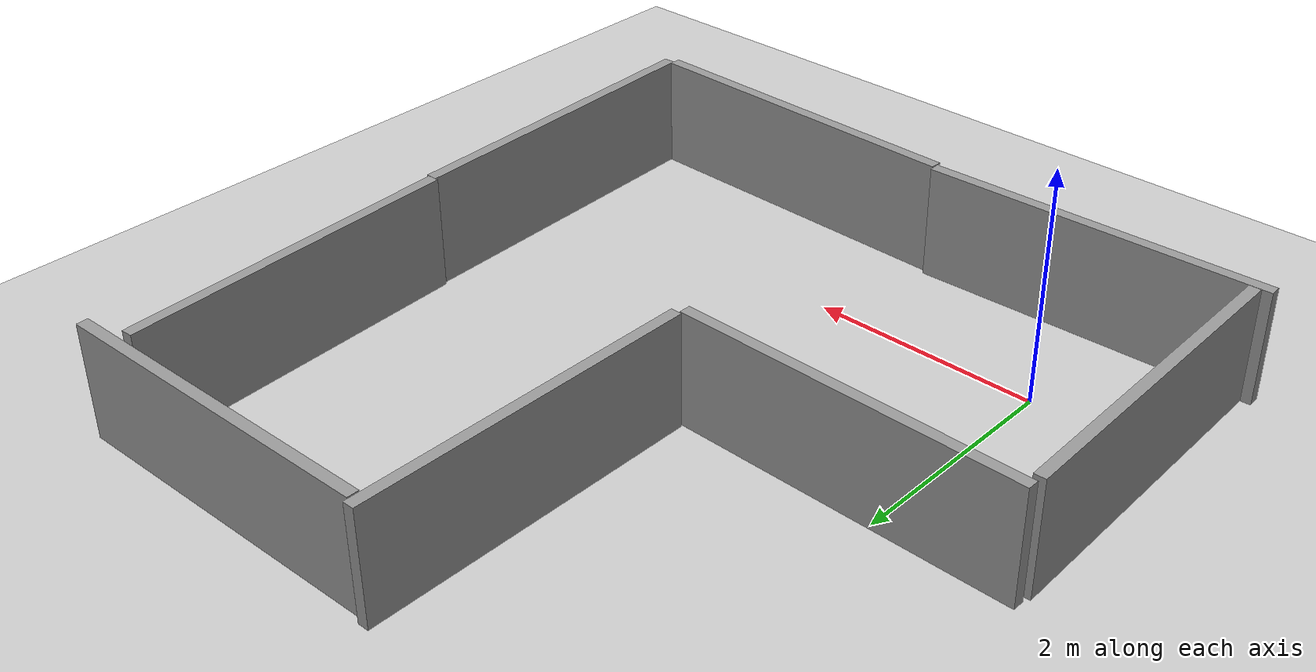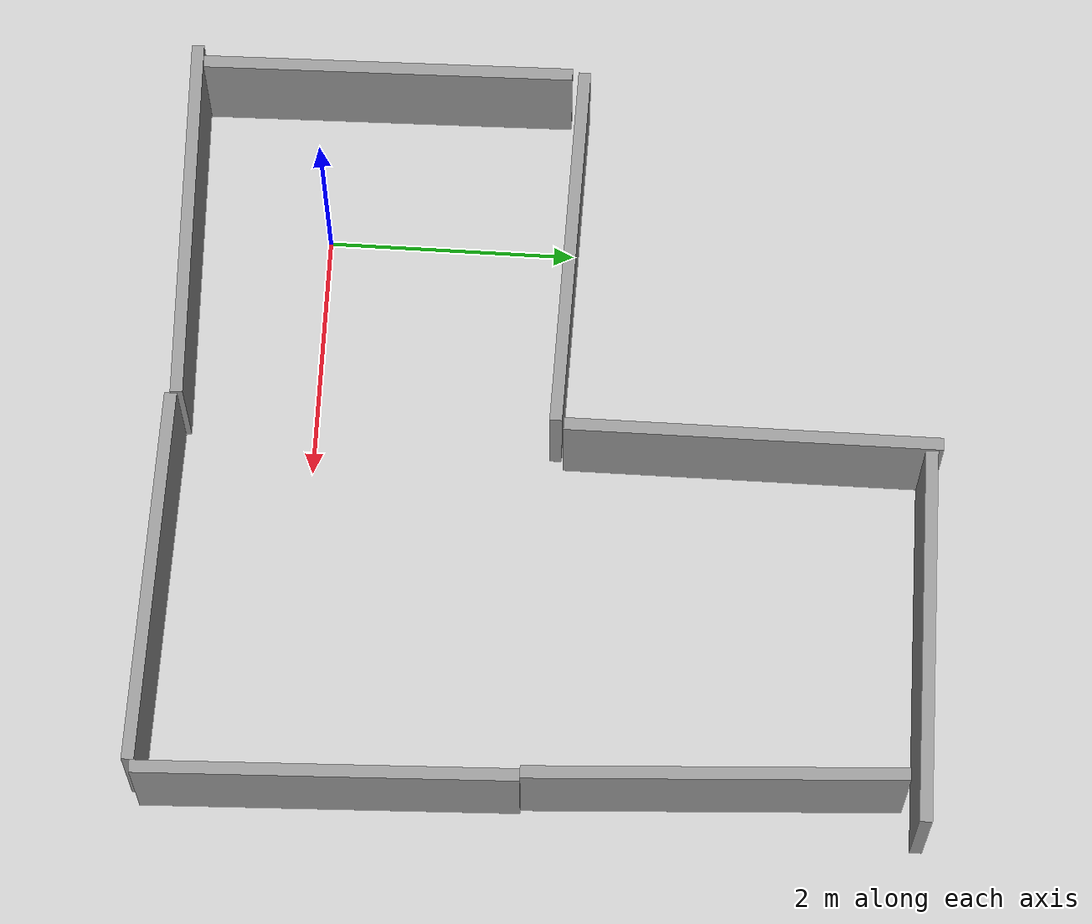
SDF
<sdf version="1.6">
 <world name="default">
  <light name="sun" type="directional">
   <pose>0 0 10 0 -0 0</pose>
   <diffuse>0.8 0.8 0.8 1</diffuse>
   <specular>0.1 0.1 0.1 1</specular>
   <attenuation>
    <range>1000</range>
    <constant>0.9</constant>
    <linear>0.01</linear>
    <quadratic>0.001</quadratic>
   </attenuation>
   <direction>-0.5 0.5 -1</direction>
  </light>
  <model name="ground_plane">
   <static>1</static>
   <link name="link">
    <collision name="collision">
     <geometry><plane><normal>0 0 1</normal><size>100 100</size></plane></geometry>
     <surface><friction><ode><mu>100</mu><mu2>50</mu2></ode></friction></surface>
    </collision>
    <visual name="visual">
     <cast_shadows>0</cast_shadows>
     <geometry><plane><normal>0 0 1</normal><size>100 100</size></plane></geometry>
     <material>
      <script><uri>file://media/materials/scripts/gazebo.material</uri><name>Gazebo/Grey</name></script>
     </material>
    </visual>
   </link>
  </model>
  <gravity>0 0 -9.8</gravity>
  <magnetic_field>6e-06 2.3e-05 -4.2e-05</magnetic_field>
  <atmosphere type="adiabatic"/>
  <physics name="default_physics" default="0" type="ode">
   <max_step_size>0.001</max_step_size>
   <real_time_factor>1</real_time_factor>
   <real_time_update_rate>1000</real_time_update_rate>
  </physics>
  <scene><ambient>0.4 0.4 0.4 1</ambient><background>0.7 0.7 0.7 1</background><shadows>1</shadows></scene>
  <spherical_coordinates>
   <surface_model>EARTH_WGS84</surface_model>
   <latitude_deg>0</latitude_deg>
   <longitude_deg>0</longitude_deg>
   <elevation>0</elevation>
   <heading_deg>0</heading_deg>
  </spherical_coordinates>
  <model name="plank_1">
   <link name="link">
    <inertial>
     <mass>1</mass>
     <inertia>
      <ixx>0.166667</ixx>
      <ixy>0</ixy>
      <ixz>0</ixz>
      <iyy>0.166667</iyy>
      <iyz>0</iyz>
      <izz>0.166667</izz>
     </inertia>
    </inertial>
    <visual name="visual">
     <geometry><box><size>0.1 3 1</size></box></geometry>
     <material>
      <script><name>Gazebo/Grey</name><uri>file://media/materials/scripts/gazebo.material</uri></script>
      <ambient>0.3 0.3 0.3 1</ambient>
      <diffuse>0.7 0.7 0.7 1</diffuse>
      <specular>0.01 0.01 0.01 1</specular>
      <emissive>0 0 0 1</emissive>
      <shader type="vertex"><normal_map>__default__</normal_map></shader>
     </material>
    </visual>
    <collision name="collision">
     <geometry><box><size>0.1 3 1</size></box></geometry>
     <surface>
      <friction>
       <ode><mu>1</mu><mu2>1</mu2><fdir1>0 0 0</fdir1><slip1>0</slip1><slip2>0</slip2></ode>
       <torsional>
        <coefficient>1</coefficient>
        <patch_radius>0</patch_radius>
        <surface_radius>0</surface_radius>
        <use_patch_radius>1</use_patch_radius>
        <ode><slip>0</slip></ode>
       </torsional>
      </friction>
      <bounce><restitution_coefficient>0</restitution_coefficient><threshold>1e+06</threshold></bounce>
      <contact>
       <collide_without_contact>0</collide_without_contact>
       <collide_without_contact_bitmask>1</collide_without_contact_bitmask>
       <collide_bitmask>1</collide_bitmask>
       <ode>
        <soft_cfm>0</soft_cfm>
        <soft_erp>0.2</soft_erp>
        <kp>1e+13</kp>
        <kd>1</kd>
        <max_vel>0.01</max_vel>
        <min_depth>0</min_depth>
       </ode>
       <bullet>
        <split_impulse>1</split_impulse>
        <split_impulse_penetration_threshold>-0.01</split_impulse_penetration_threshold>
        <soft_cfm>0</soft_cfm>
        <soft_erp>0.2</soft_erp>
        <kp>1e+13</kp>
        <kd>1</kd>
       </bullet>
      </contact>
     </surface>
    </collision>
   </link>
   <static>0</static>
   <pose>4.5761 3.34647 0.499825 0.000117 -4e-06 0.053841</pose>
  </model>
  <model name="plank_2">
   <link name="link">
    <inertial>
     <mass>1</mass>
     <inertia>
      <ixx>0.166667</ixx>
      <ixy>0</ixy>
      <ixz>0</ixz>
      <iyy>0.166667</iyy>
      <iyz>0</iyz>
      <izz>0.166667</izz>
     </inertia>
    </inertial>
    <visual name="visual">
     <geometry><box><size>0.1 3 1</size></box></geometry>
     <material>
      <script><name>Gazebo/Grey</name><uri>file://media/materials/scripts/gazebo.material</uri></script>
      <ambient>0.3 0.3 0.3 1</ambient>
      <diffuse>0.7 0.7 0.7 1</diffuse>
      <specular>0.01 0.01 0.01 1</specular>
      <emissive>0 0 0 1</emissive>
      <shader type="vertex"><normal_map>__default__</normal_map></shader>
     </material>
    </visual>
    <collision name="collision">
     <geometry><box><size>0.1 3 1</size></box></geometry>
     <surface>
      <friction>
       <ode><mu>1</mu><mu2>1</mu2><fdir1>0 0 0</fdir1><slip1>0</slip1><slip2>0</slip2></ode>
       <torsional>
        <coefficient>1</coefficient>
        <patch_radius>0</patch_radius>
        <surface_radius>0</surface_radius>
        <use_patch_radius>1</use_patch_radius>
        <ode><slip>0</slip></ode>
       </torsional>
      </friction>
      <bounce><restitution_coefficient>0</restitution_coefficient><threshold>1e+06</threshold></bounce>
      <contact>
       <collide_without_contact>0</collide_without_contact>
       <collide_without_contact_bitmask>1</collide_without_contact_bitmask>
       <collide_bitmask>1</collide_bitmask>
       <ode>
        <soft_cfm>0</soft_cfm>
        <soft_erp>0.2</soft_erp>
        <kp>1e+13</kp>
        <kd>1</kd>
        <max_vel>0.01</max_vel>
        <min_depth>0</min_depth>
       </ode>
       <bullet>
        <split_impulse>1</split_impulse>
        <split_impulse_penetration_threshold>-0.01</split_impulse_penetration_threshold>
        <soft_cfm>0</soft_cfm>
        <soft_erp>0.2</soft_erp>
        <kp>1e+13</kp>
        <kd>1</kd>
       </bullet>
      </contact>
     </surface>
    </collision>
   </link>
   <static>0</static>
   <pose>-1.1666 0.416884 0.499825 -0.000117 4e-06 0.01999</pose>
  </model>
  <model name="plank_3">
   <link name="link">
    <inertial>
     <mass>1</mass>
     <inertia>
      <ixx>0.166667</ixx>
      <ixy>0</ixy>
      <ixz>0</ixz>
      <iyy>0.166667</iyy>
      <iyz>0</iyz>
      <izz>0.166667</izz>
     </inertia>
    </inertial>
    <visual name="visual">
     <geometry><box><size>0.1 3 1</size></box></geometry>
     <material>
      <script><name>Gazebo/Grey</name><uri>file://media/materials/scripts/gazebo.material</uri></script>
      <ambient>0.3 0.3 0.3 1</ambient>
      <diffuse>0.7 0.7 0.7 1</diffuse>
      <specular>0.01 0.01 0.01 1</specular>
      <emissive>0 0 0 1</emissive>
      <shader type="vertex"><normal_map>__default__</normal_map></shader>
     </material>
    </visual>
    <collision name="collision">
     <geometry><box><size>0.1 3 1</size></box></geometry>
     <surface>
      <friction>
       <ode><mu>1</mu><mu2>1</mu2><fdir1>0 0 0</fdir1><slip1>0</slip1><slip2>0</slip2></ode>
       <torsional>
        <coefficient>1</coefficient>
        <patch_radius>0</patch_radius>
        <surface_radius>0</surface_radius>
        <use_patch_radius>1</use_patch_radius>
        <ode><slip>0</slip></ode>
       </torsional>
      </friction>
      <bounce><restitution_coefficient>0</restitution_coefficient><threshold>1e+06</threshold></bounce>
      <contact>
       <collide_without_contact>0</collide_without_contact>
       <collide_without_contact_bitmask>1</collide_without_contact_bitmask>
       <collide_bitmask>1</collide_bitmask>
       <ode>
        <soft_cfm>0</soft_cfm>
        <soft_erp>0.2</soft_erp>
        <kp>1e+13</kp>
        <kd>1</kd>
        <max_vel>0.01</max_vel>
        <min_depth>0</min_depth>
       </ode>
       <bullet>
        <split_impulse>1</split_impulse>
        <split_impulse_penetration_threshold>-0.01</split_impulse_penetration_threshold>
        <soft_cfm>0</soft_cfm>
        <soft_erp>0.2</soft_erp>
        <kp>1e+13</kp>
        <kd>1</kd>
       </bullet>
      </contact>
     </surface>
    </collision>
   </link>
   <static>0</static>
   <pose>0.228211 -1.09838 0.499826 0.000117 3e-06 -1.54251</pose>
  </model>
  <model name="plank_4">
   <link name="link">
    <inertial>
     <mass>1</mass>
     <inertia>
      <ixx>0.166667</ixx>
      <ixy>0</ixy>
      <ixz>0</ixz>
      <iyy>0.166667</iyy>
      <iyz>0</iyz>
      <izz>0.166667</izz>
     </inertia>
    </inertial>
    <visual name="visual">
     <geometry><box><size>0.1 3 1</size></box></geometry>
     <material>
      <script><name>Gazebo/Grey</name><uri>file://media/materials/scripts/gazebo.material</uri></script>
      <ambient>0.3 0.3 0.3 1</ambient>
      <diffuse>0.7 0.7 0.7 1</diffuse>
      <specular>0.01 0.01 0.01 1</specular>
      <emissive>0 0 0 1</emissive>
      <shader type="vertex"><normal_map>__default__</normal_map></shader>
     </material>
    </visual>
    <collision name="collision">
     <geometry><box><size>0.1 3 1</size></box></geometry>
     <surface>
      <friction>
       <ode><mu>1</mu><mu2>1</mu2><fdir1>0 0 0</fdir1><slip1>0</slip1><slip2>0</slip2></ode>
       <torsional>
        <coefficient>1</coefficient>
        <patch_radius>0</patch_radius>
        <surface_radius>0</surface_radius>
        <use_patch_radius>1</use_patch_radius>
        <ode><slip>0</slip></ode>
       </torsional>
      </friction>
      <bounce><restitution_coefficient>0</restitution_coefficient><threshold>1e+06</threshold></bounce>
      <contact>
       <collide_without_contact>0</collide_without_contact>
       <collide_without_contact_bitmask>1</collide_without_contact_bitmask>
       <collide_bitmask>1</collide_bitmask>
       <ode>
        <soft_cfm>0</soft_cfm>
        <soft_erp>0.2</soft_erp>
        <kp>1e+13</kp>
        <kd>1</kd>
        <max_vel>0.01</max_vel>
        <min_depth>0</min_depth>
       </ode>
       <bullet>
        <split_impulse>1</split_impulse>
        <split_impulse_penetration_threshold>-0.01</split_impulse_penetration_threshold>
        <soft_cfm>0</soft_cfm>
        <soft_erp>0.2</soft_erp>
        <kp>1e+13</kp>
        <kd>1</kd>
       </bullet>
      </contact>
     </surface>
    </collision>
   </link>
   <static>0</static>
   <pose>4.7366 0.349409 0.499825 -0.000117 4e-06 0.03655</pose>
  </model>
  <model name="plank_5">
   <link name="link">
    <inertial>
     <mass>1</mass>
     <inertia>
      <ixx>0.166667</ixx>
      <ixy>0</ixy>
      <ixz>0</ixz>
      <iyy>0.166667</iyy>
      <iyz>0</iyz>
      <izz>0.166667</izz>
     </inertia>
    </inertial>
    <visual name="visual">
     <geometry><box><size>0.1 3 1</size></box></geometry>
     <material>
      <script><name>Gazebo/Grey</name><uri>file://media/materials/scripts/gazebo.material</uri></script>
      <ambient>0.3 0.3 0.3 1</ambient>
      <diffuse>0.7 0.7 0.7 1</diffuse>
      <specular>0.01 0.01 0.01 1</specular>
      <emissive>0 0 0 1</emissive>
      <shader type="vertex"><normal_map>__default__</normal_map></shader>
     </material>
    </visual>
    <collision name="collision">
     <geometry><box><size>0.1 3 1</size></box></geometry>
     <surface>
      <friction>
       <ode><mu>1</mu><mu2>1</mu2><fdir1>0 0 0</fdir1><slip1>0</slip1><slip2>0</slip2></ode>
       <torsional>
        <coefficient>1</coefficient>
        <patch_radius>0</patch_radius>
        <surface_radius>0</surface_radius>
        <use_patch_radius>1</use_patch_radius>
        <ode><slip>0</slip></ode>
       </torsional>
      </friction>
      <bounce><restitution_coefficient>0</restitution_coefficient><threshold>1e+06</threshold></bounce>
      <contact>
       <collide_without_contact>0</collide_without_contact>
       <collide_without_contact_bitmask>1</collide_without_contact_bitmask>
       <collide_bitmask>1</collide_bitmask>
       <ode>
        <soft_cfm>0</soft_cfm>
        <soft_erp>0.2</soft_erp>
        <kp>1e+13</kp>
        <kd>1</kd>
        <max_vel>0.01</max_vel>
        <min_depth>0</min_depth>
       </ode>
       <bullet>
        <split_impulse>1</split_impulse>
        <split_impulse_penetration_threshold>-0.01</split_impulse_penetration_threshold>
        <soft_cfm>0</soft_cfm>
        <soft_erp>0.2</soft_erp>
        <kp>1e+13</kp>
        <kd>1</kd>
       </bullet>
      </contact>
     </surface>
    </collision>
   </link>
   <static>0</static>
   <pose>1.80385 3.51925 0.499825 0.000117 -3e-06 0.001877</pose>
  </model>
  <model name="plank_6">
   <link name="link">
    <inertial>
     <mass>1</mass>
     <inertia>
      <ixx>0.166667</ixx>
      <ixy>0</ixy>
      <ixz>0</ixz>
      <iyy>0.166667</iyy>
      <iyz>0</iyz>
      <izz>0.166667</izz>
     </inertia>
    </inertial>
    <visual name="visual">
     <geometry><box><size>0.1 3 1</size></box></geometry>
     <material>
      <script><name>Gazebo/Grey</name><uri>file://media/materials/scripts/gazebo.material</uri></script>
      <ambient>0.3 0.3 0.3 1</ambient>
      <diffuse>0.7 0.7 0.7 1</diffuse>
      <specular>0.01 0.01 0.01 1</specular>
      <emissive>0 0 0 1</emissive>
      <shader type="vertex"><normal_map>__default__</normal_map></shader>
     </material>
    </visual>
    <collision name="collision">
     <geometry><box><size>0.1 3 1</size></box></geometry>
     <surface>
      <friction>
       <ode><mu>1</mu><mu2>1</mu2><fdir1>0 0 0</fdir1><slip1>0</slip1><slip2>0</slip2></ode>
       <torsional>
        <coefficient>1</coefficient>
        <patch_radius>0</patch_radius>
        <surface_radius>0</surface_radius>
        <use_patch_radius>1</use_patch_radius>
        <ode><slip>0</slip></ode>
       </torsional>
      </friction>
      <bounce><restitution_coefficient>0</restitution_coefficient><threshold>1e+06</threshold></bounce>
      <contact>
       <collide_without_contact>0</collide_without_contact>
       <collide_without_contact_bitmask>1</collide_without_contact_bitmask>
       <collide_bitmask>1</collide_bitmask>
       <ode>
        <soft_cfm>0</soft_cfm>
        <soft_erp>0.2</soft_erp>
        <kp>1e+13</kp>
        <kd>1</kd>
        <max_vel>0.01</max_vel>
        <min_depth>0</min_depth>
       </ode>
       <bullet>
        <split_impulse>1</split_impulse>
        <split_impulse_penetration_threshold>-0.01</split_impulse_penetration_threshold>
        <soft_cfm>0</soft_cfm>
        <soft_erp>0.2</soft_erp>
        <kp>1e+13</kp>
        <kd>1</kd>
       </bullet>
      </contact>
     </surface>
    </collision>
   </link>
   <static>0</static>
   <pose>3.3632 4.94825 0.499825 0.000117 3e-06 1.58491</pose>
  </model>
  <model name="plank_7">
   <link name="link">
    <inertial>
     <mass>1</mass>
     <inertia>
      <ixx>0.166667</ixx>
      <ixy>0</ixy>
      <ixz>0</ixz>
      <iyy>0.166667</iyy>
      <iyz>0</iyz>
      <izz>0.166667</izz>
     </inertia>
    </inertial>
    <visual name="visual">
     <geometry><box><size>0.1 3 1</size></box></geometry>
     <material>
      <script><name>Gazebo/Grey</name><uri>file://media/materials/scripts/gazebo.material</uri></script>
      <ambient>0.3 0.3 0.3 1</ambient>
      <diffuse>0.7 0.7 0.7 1</diffuse>
      <specular>0.01 0.01 0.01 1</specular>
      <emissive>0 0 0 1</emissive>
      <shader type="vertex"><normal_map>__default__</normal_map></shader>
     </material>
    </visual>
    <collision name="collision">
     <geometry><box><size>0.1 3 1</size></box></geometry>
     <surface>
      <friction>
       <ode><mu>1</mu><mu2>1</mu2><fdir1>0 0 0</fdir1><slip1>0</slip1><slip2>0</slip2></ode>
       <torsional>
        <coefficient>1</coefficient>
        <patch_radius>0</patch_radius>
        <surface_radius>0</surface_radius>
        <use_patch_radius>1</use_patch_radius>
        <ode><slip>0</slip></ode>
       </torsional>
      </friction>
      <bounce><restitution_coefficient>0</restitution_coefficient><threshold>1e+06</threshold></bounce>
      <contact>
       <collide_without_contact>0</collide_without_contact>
       <collide_without_contact_bitmask>1</collide_without_contact_bitmask>
       <collide_bitmask>1</collide_bitmask>
       <ode>
        <soft_cfm>0</soft_cfm>
        <soft_erp>0.2</soft_erp>
        <kp>1e+13</kp>
        <kd>1</kd>
        <max_vel>0.01</max_vel>
        <min_depth>0</min_depth>
       </ode>
       <bullet>
        <split_impulse>1</split_impulse>
        <split_impulse_penetration_threshold>-0.01</split_impulse_penetration_threshold>
        <soft_cfm>0</soft_cfm>
        <soft_erp>0.2</soft_erp>
        <kp>1e+13</kp>
        <kd>1</kd>
       </bullet>
      </contact>
     </surface>
    </collision>
   </link>
   <static>0</static>
   <pose>3.23896 -1.13223 0.499825 0.000117 3e-06 1.54824</pose>
  </model>
  <model name="plank_8">
   <link name="link">
    <inertial>
     <mass>1</mass>
     <inertia>
      <ixx>0.166667</ixx>
      <ixy>0</ixy>
      <ixz>0</ixz>
      <iyy>0.166667</iyy>
      <iyz>0</iyz>
      <izz>0.166667</izz>
     </inertia>
    </inertial>
    <visual name="visual">
     <geometry><box><size>0.1 3 1</size></box></geometry>
     <material>
      <script><name>Gazebo/Grey</name><uri>file://media/materials/scripts/gazebo.material</uri></script>
      <ambient>0.3 0.3 0.3 1</ambient>
      <diffuse>0.7 0.7 0.7 1</diffuse>
      <specular>0.01 0.01 0.01 1</specular>
      <emissive>0 0 0 1</emissive>
      <shader type="vertex"><normal_map>__default__</normal_map></shader>
     </material>
    </visual>
    <collision name="collision">
     <geometry><box><size>0.1 3 1</size></box></geometry>
     <surface>
      <friction>
       <ode><mu>1</mu><mu2>1</mu2><fdir1>0 0 0</fdir1><slip1>0</slip1><slip2>0</slip2></ode>
       <torsional>
        <coefficient>1</coefficient>
        <patch_radius>0</patch_radius>
        <surface_radius>0</surface_radius>
        <use_patch_radius>1</use_patch_radius>
        <ode><slip>0</slip></ode>
       </torsional>
      </friction>
      <bounce><restitution_coefficient>0</restitution_coefficient><threshold>1e+06</threshold></bounce>
      <contact>
       <collide_without_contact>0</collide_without_contact>
       <collide_without_contact_bitmask>1</collide_without_contact_bitmask>
       <collide_bitmask>1</collide_bitmask>
       <ode>
        <soft_cfm>0</soft_cfm>
        <soft_erp>0.2</soft_erp>
        <kp>1e+13</kp>
        <kd>1</kd>
        <max_vel>0.01</max_vel>
        <min_depth>0</min_depth>
       </ode>
       <bullet>
        <split_impulse>1</split_impulse>
        <split_impulse_penetration_threshold>-0.01</split_impulse_penetration_threshold>
        <soft_cfm>0</soft_cfm>
        <soft_erp>0.2</soft_erp>
        <kp>1e+13</kp>
        <kd>1</kd>
       </bullet>
      </contact>
     </surface>
    </collision>
   </link>
   <static>0</static>
   <pose>0.283986 1.98533 0.499825 0.000117 3e-06 1.55092</pose>
  </model>
 </world>
</sdf>
